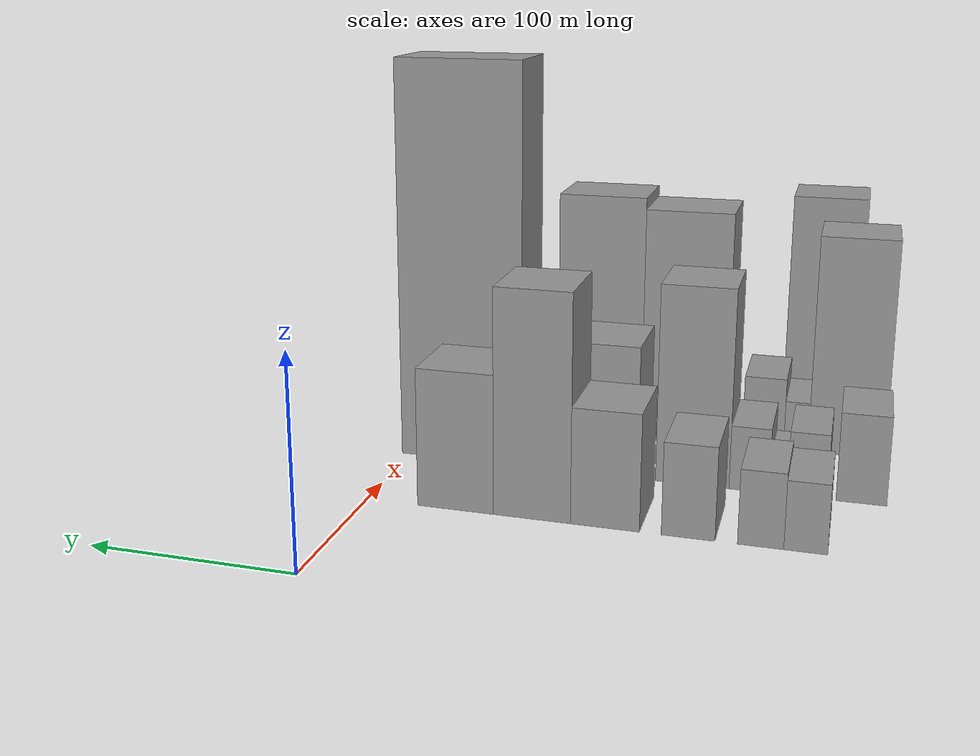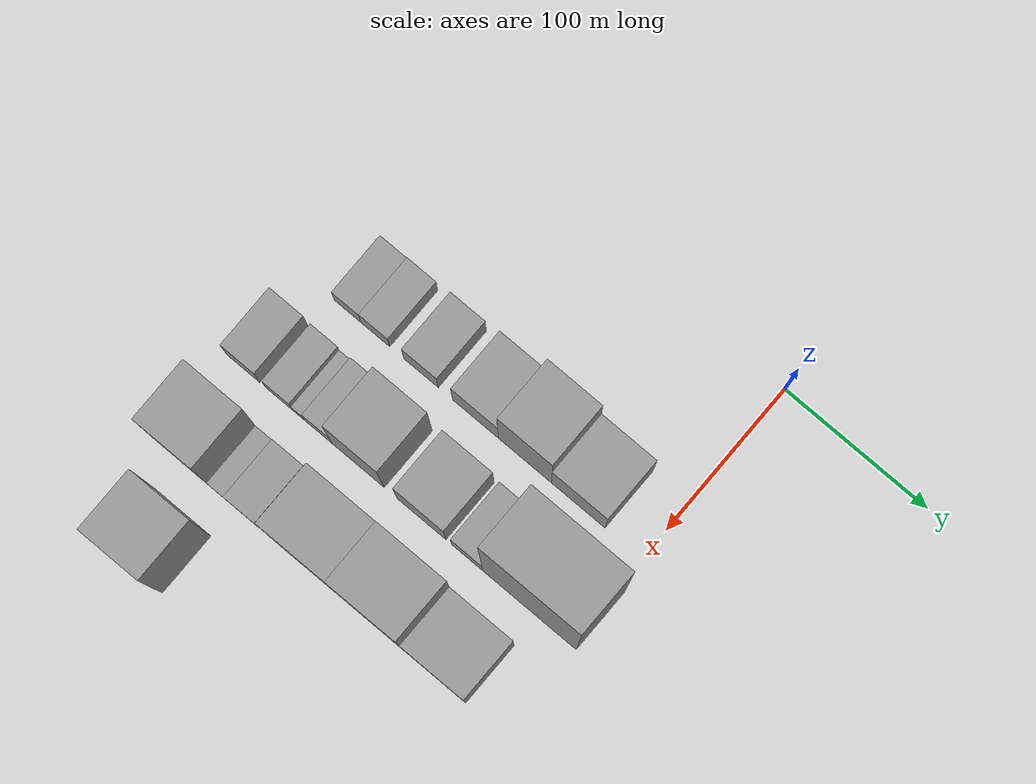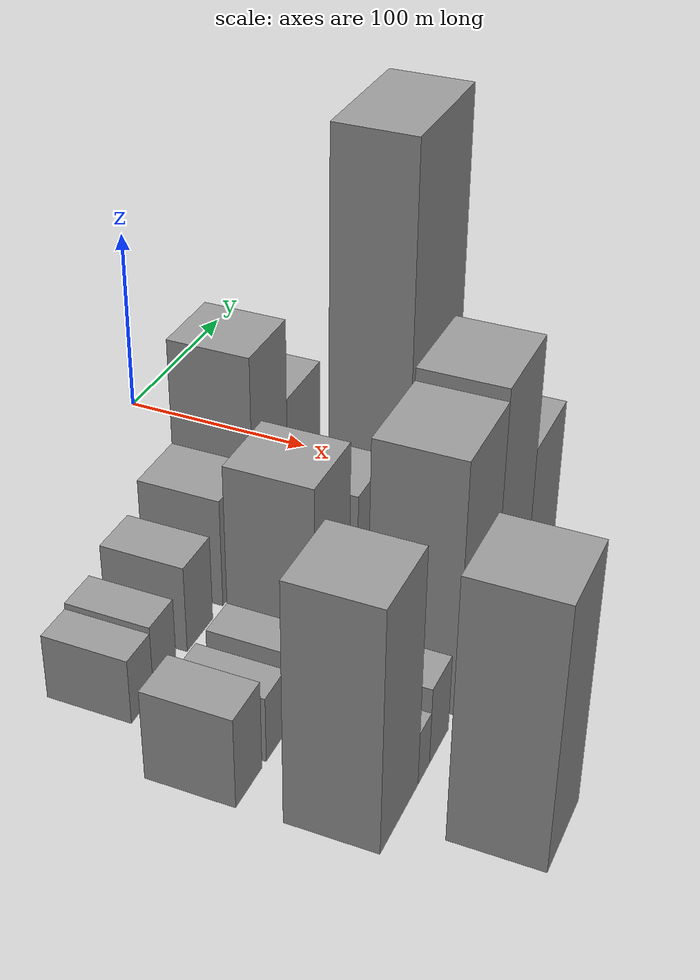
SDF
<sdf version="1.6">
 <world name="default">
  <model name="building_24">
   <static>1</static>
   <pose>100.0000 -207.7419 0 0.000000 0.000000 0.000000</pose>
   <link name="link">
    <pose>0 0 16.50 0 0 0</pose>
    <collision name="collision"><geometry><box><size>40.0000 19.0362 33.0000</size></box></geometry></collision>
    <visual name="visual">
     <cast_shadows>0</cast_shadows>
     <geometry><box><size>40.0000 19.0362 33.0000</size></box></geometry>
     <material>
      <script>
       <uri>model://grey_wall/materials/scripts</uri>
       <uri>model://grey_wall/materials/textures</uri>
       <name>vrc/grey_wall</name>
      </script>
     </material>
    </visual>
   </link>
  </model>
  <model name="building_25">
   <static>1</static>
   <pose>100.0000 -188.0473 0 0.000000 0.000000 0.000000</pose>
   <link name="link">
    <pose>0 0 18.00 0 0 0</pose>
    <collision name="collision"><geometry><box><size>40.0000 20.3529 36.0000</size></box></geometry></collision>
    <visual name="visual">
     <cast_shadows>0</cast_shadows>
     <geometry><box><size>40.0000 20.3529 36.0000</size></box></geometry>
     <material>
      <script>
       <uri>model://grey_wall/materials/scripts</uri>
       <uri>model://grey_wall/materials/textures</uri>
       <name>vrc/grey_wall</name>
      </script>
     </material>
    </visual>
   </link>
  </model>
  <model name="building_26">
   <static>1</static>
   <pose>100.0000 -155.6790 0 0.000000 0.000000 0.000000</pose>
   <link name="link">
    <pose>0 0 22.50 0 0 0</pose>
    <collision name="collision"><geometry><box><size>40.0000 24.3837 45.0000</size></box></geometry></collision>
    <visual name="visual">
     <cast_shadows>0</cast_shadows>
     <geometry><box><size>40.0000 24.3837 45.0000</size></box></geometry>
     <material>
      <script>
       <uri>model://grey_wall/materials/scripts</uri>
       <uri>model://grey_wall/materials/textures</uri>
       <name>vrc/grey_wall</name>
      </script>
     </material>
    </visual>
   </link>
  </model>
  <model name="building_27">
   <static>1</static>
   <pose>100.0000 -117.2809 0 0.000000 0.000000 0.000000</pose>
   <link name="link">
    <pose>0 0 28.50 0 0 0</pose>
    <collision name="collision"><geometry><box><size>40.0000 32.4126 57.0000</size></box></geometry></collision>
    <visual name="visual">
     <cast_shadows>0</cast_shadows>
     <geometry><box><size>40.0000 32.4126 57.0000</size></box></geometry>
     <material>
      <script>
       <uri>model://grey_wall/materials/scripts</uri>
       <uri>model://grey_wall/materials/textures</uri>
       <name>vrc/grey_wall</name>
      </script>
     </material>
    </visual>
   </link>
  </model>
  <model name="building_28">
   <static>1</static>
   <pose>100.0000 -82.4573 0 0.000000 0.000000 0.000000</pose>
   <link name="link">
    <pose>0 0 55.50 0 0 0</pose>
    <collision name="collision"><geometry><box><size>40.0000 37.2345 111.0000</size></box></geometry></collision>
    <visual name="visual">
     <cast_shadows>0</cast_shadows>
     <geometry><box><size>40.0000 37.2345 111.0000</size></box></geometry>
     <material>
      <script>
       <uri>model://grey_wall/materials/scripts</uri>
       <uri>model://grey_wall/materials/textures</uri>
       <name>vrc/grey_wall</name>
      </script>
     </material>
    </visual>
   </link>
  </model>
  <model name="building_29">
   <static>1</static>
   <pose>100.0000 -44.9028 0 0.000000 0.000000 0.000000</pose>
   <link name="link">
    <pose>0 0 34.50 0 0 0</pose>
    <collision name="collision"><geometry><box><size>40.0000 37.8745 69.0000</size></box></geometry></collision>
    <visual name="visual">
     <cast_shadows>0</cast_shadows>
     <geometry><box><size>40.0000 37.8745 69.0000</size></box></geometry>
     <material>
      <script>
       <uri>model://grey_wall/materials/scripts</uri>
       <uri>model://grey_wall/materials/textures</uri>
       <name>vrc/grey_wall</name>
      </script>
     </material>
    </visual>
   </link>
  </model>
  <model name="building_75">
   <static>1</static>
   <pose>160.0000 -230.6805 0 0.000000 0.000000 0.000000</pose>
   <link name="link">
    <pose>0 0 22.50 0 0 0</pose>
    <collision name="collision"><geometry><box><size>40.0000 23.6315 45.0000</size></box></geometry></collision>
    <visual name="visual">
     <cast_shadows>0</cast_shadows>
     <geometry><box><size>40.0000 23.6315 45.0000</size></box></geometry>
     <material>
      <script>
       <uri>model://grey_wall/materials/scripts</uri>
       <uri>model://grey_wall/materials/textures</uri>
       <name>vrc/grey_wall</name>
      </script>
     </material>
    </visual>
   </link>
  </model>
  <model name="building_76">
   <static>1</static>
   <pose>160.0000 -205.2966 0 0.000000 0.000000 0.000000</pose>
   <link name="link">
    <pose>0 0 16.50 0 0 0</pose>
    <collision name="collision"><geometry><box><size>40.0000 19.1364 33.0000</size></box></geometry></collision>
    <visual name="visual">
     <cast_shadows>0</cast_shadows>
     <geometry><box><size>40.0000 19.1364 33.0000</size></box></geometry>
     <material>
      <script>
       <uri>model://grey_wall/materials/scripts</uri>
       <uri>model://grey_wall/materials/textures</uri>
       <name>vrc/grey_wall</name>
      </script>
     </material>
    </visual>
   </link>
  </model>
  <model name="building_77">
   <static>1</static>
   <pose>160.0000 -191.3199 0 0.000000 0.000000 0.000000</pose>
   <link name="link">
    <pose>0 0 9.00 0 0 0</pose>
    <collision name="collision"><geometry><box><size>40.0000 8.8171 18.0000</size></box></geometry></collision>
    <visual name="visual">
     <cast_shadows>0</cast_shadows>
     <geometry><box><size>40.0000 8.8171 18.0000</size></box></geometry>
     <material>
      <script>
       <uri>model://grey_wall/materials/scripts</uri>
       <uri>model://grey_wall/materials/textures</uri>
       <name>vrc/grey_wall</name>
      </script>
     </material>
    </visual>
   </link>
  </model>
  <model name="building_78">
   <static>1</static>
   <pose>160.0000 -177.2058 0 0.000000 0.000000 0.000000</pose>
   <link name="link">
    <pose>0 0 16.50 0 0 0</pose>
    <collision name="collision"><geometry><box><size>40.0000 19.4111 33.0000</size></box></geometry></collision>
    <visual name="visual">
     <cast_shadows>0</cast_shadows>
     <geometry><box><size>40.0000 19.4111 33.0000</size></box></geometry>
     <material>
      <script>
       <uri>model://grey_wall/materials/scripts</uri>
       <uri>model://grey_wall/materials/textures</uri>
       <name>vrc/grey_wall</name>
      </script>
     </material>
    </visual>
   </link>
  </model>
  <model name="building_79">
   <static>1</static>
   <pose>160.0000 -149.1552 0 0.000000 0.000000 0.000000</pose>
   <link name="link">
    <pose>0 0 51.00 0 0 0</pose>
    <collision name="collision"><geometry><box><size>40.0000 36.6900 102.0000</size></box></geometry></collision>
    <visual name="visual">
     <cast_shadows>0</cast_shadows>
     <geometry><box><size>40.0000 36.6900 102.0000</size></box></geometry>
     <material>
      <script>
       <uri>model://grey_wall/materials/scripts</uri>
       <uri>model://grey_wall/materials/textures</uri>
       <name>vrc/grey_wall</name>
      </script>
     </material>
    </visual>
   </link>
  </model>
  <model name="building_80">
   <static>1</static>
   <pose>160.0000 -104.5322 0 0.000000 0.000000 0.000000</pose>
   <link name="link">
    <pose>0 0 34.50 0 0 0</pose>
    <collision name="collision"><geometry><box><size>40.0000 34.5561 69.0000</size></box></geometry></collision>
    <visual name="visual">
     <cast_shadows>0</cast_shadows>
     <geometry><box><size>40.0000 34.5561 69.0000</size></box></geometry>
     <material>
      <script>
       <uri>model://grey_wall/materials/scripts</uri>
       <uri>model://grey_wall/materials/textures</uri>
       <name>vrc/grey_wall</name>
      </script>
     </material>
    </visual>
   </link>
  </model>
  <model name="building_81">
   <static>1</static>
   <pose>160.0000 -72.2438 0 0.000000 0.000000 0.000000</pose>
   <link name="link">
    <pose>0 0 21.00 0 0 0</pose>
    <collision name="collision"><geometry><box><size>40.0000 22.0208 42.0000</size></box></geometry></collision>
    <visual name="visual">
     <cast_shadows>0</cast_shadows>
     <geometry><box><size>40.0000 22.0208 42.0000</size></box></geometry>
     <material>
      <script>
       <uri>model://grey_wall/materials/scripts</uri>
       <uri>model://grey_wall/materials/textures</uri>
       <name>vrc/grey_wall</name>
      </script>
     </material>
    </visual>
   </link>
  </model>
  <model name="building_82">
   <static>1</static>
   <pose>160.0000 -28.4740 0 0.000000 0.000000 0.000000</pose>
   <link name="link">
    <pose>0 0 103.50 0 0 0</pose>
    <collision name="collision"><geometry><box><size>40.0000 65.5187 207.0000</size></box></geometry></collision>
    <visual name="visual">
     <cast_shadows>0</cast_shadows>
     <geometry><box><size>40.0000 65.5187 207.0000</size></box></geometry>
     <material>
      <script>
       <uri>model://grey_wall/materials/scripts</uri>
       <uri>model://grey_wall/materials/textures</uri>
       <name>vrc/grey_wall</name>
      </script>
     </material>
    </visual>
   </link>
  </model>
  <model name="building_131">
   <static>1</static>
   <pose>220.0000 -222.2349 0 0.000000 0.000000 0.000000</pose>
   <link name="link">
    <pose>0 0 58.50 0 0 0</pose>
    <collision name="collision"><geometry><box><size>40.0000 39.5420 117.0000</size></box></geometry></collision>
    <visual name="visual">
     <cast_shadows>0</cast_shadows>
     <geometry><box><size>40.0000 39.5420 117.0000</size></box></geometry>
     <material>
      <script>
       <uri>model://grey_wall/materials/scripts</uri>
       <uri>model://grey_wall/materials/textures</uri>
       <name>vrc/grey_wall</name>
      </script>
     </material>
    </visual>
   </link>
  </model>
  <model name="building_132">
   <static>1</static>
   <pose>220.0000 -196.1053 0 0.000000 0.000000 0.000000</pose>
   <link name="link">
    <pose>0 0 13.50 0 0 0</pose>
    <collision name="collision"><geometry><box><size>40.0000 12.7173 27.0000</size></box></geometry></collision>
    <visual name="visual">
     <cast_shadows>0</cast_shadows>
     <geometry><box><size>40.0000 12.7173 27.0000</size></box></geometry>
     <material>
      <script>
       <uri>model://grey_wall/materials/scripts</uri>
       <uri>model://grey_wall/materials/textures</uri>
       <name>vrc/grey_wall</name>
      </script>
     </material>
    </visual>
   </link>
  </model>
  <model name="building_133">
   <static>1</static>
   <pose>220.0000 -178.8278 0 0.000000 0.000000 0.000000</pose>
   <link name="link">
    <pose>0 0 19.50 0 0 0</pose>
    <collision name="collision"><geometry><box><size>40.0000 21.8377 39.0000</size></box></geometry></collision>
    <visual name="visual">
     <cast_shadows>0</cast_shadows>
     <geometry><box><size>40.0000 21.8377 39.0000</size></box></geometry>
     <material>
      <script>
       <uri>model://grey_wall/materials/scripts</uri>
       <uri>model://grey_wall/materials/textures</uri>
       <name>vrc/grey_wall</name>
      </script>
     </material>
    </visual>
   </link>
  </model>
  <model name="building_134">
   <static>1</static>
   <pose>220.0000 -135.7961 0 0.000000 0.000000 0.000000</pose>
   <link name="link">
    <pose>0 0 63.00 0 0 0</pose>
    <collision name="collision"><geometry><box><size>40.0000 46.2257 126.0000</size></box></geometry></collision>
    <visual name="visual">
     <cast_shadows>0</cast_shadows>
     <geometry><box><size>40.0000 46.2257 126.0000</size></box></geometry>
     <material>
      <script>
       <uri>model://grey_wall/materials/scripts</uri>
       <uri>model://grey_wall/materials/textures</uri>
       <name>vrc/grey_wall</name>
      </script>
     </material>
    </visual>
   </link>
  </model>
  <model name="building_135">
   <static>1</static>
   <pose>220.0000 -89.2988 0 0.000000 0.000000 0.000000</pose>
   <link name="link">
    <pose>0 0 66.00 0 0 0</pose>
    <collision name="collision"><geometry><box><size>40.0000 46.7689 132.0000</size></box></geometry></collision>
    <visual name="visual">
     <cast_shadows>0</cast_shadows>
     <geometry><box><size>40.0000 46.7689 132.0000</size></box></geometry>
     <material>
      <script>
       <uri>model://grey_wall/materials/scripts</uri>
       <uri>model://grey_wall/materials/textures</uri>
       <name>vrc/grey_wall</name>
      </script>
     </material>
    </visual>
   </link>
  </model>
  <model name="building_136">
   <static>1</static>
   <pose>220.0000 -44.2200 0 0.000000 0.000000 0.000000</pose>
   <link name="link">
    <pose>0 0 37.50 0 0 0</pose>
    <collision name="collision"><geometry><box><size>40.0000 43.3888 75.0000</size></box></geometry></collision>
    <visual name="visual">
     <cast_shadows>0</cast_shadows>
     <geometry><box><size>40.0000 43.3888 75.0000</size></box></geometry>
     <material>
      <script>
       <uri>model://grey_wall/materials/scripts</uri>
       <uri>model://grey_wall/materials/textures</uri>
       <name>vrc/grey_wall</name>
      </script>
     </material>
    </visual>
   </link>
  </model>
  <model name="building_190">
   <static>1</static>
   <pose>280.0000 -205.2002 0 0.000000 0.000000 0.000000</pose>
   <link name="link">
    <pose>0 0 63.00 0 0 0</pose>
    <collision name="collision"><geometry><box><size>40.0000 40.2331 126.0000</size></box></geometry></collision>
    <visual name="visual">
     <cast_shadows>0</cast_shadows>
     <geometry><box><size>40.0000 40.2331 126.0000</size></box></geometry>
     <material>
      <script>
       <uri>model://grey_wall/materials/scripts</uri>
       <uri>model://grey_wall/materials/textures</uri>
       <name>vrc/grey_wall</name>
      </script>
     </material>
    </visual>
   </link>
  </model>
 </world>
</sdf>
